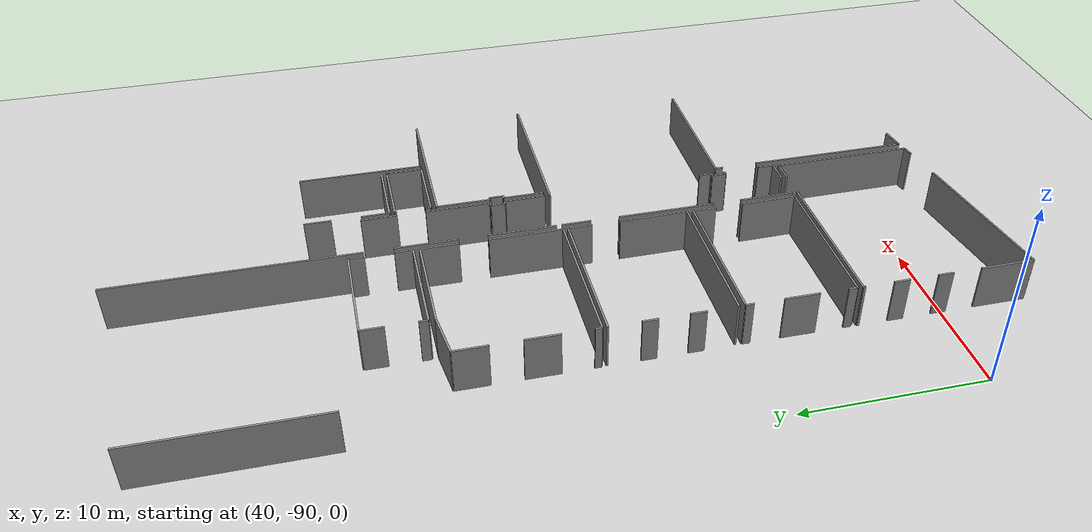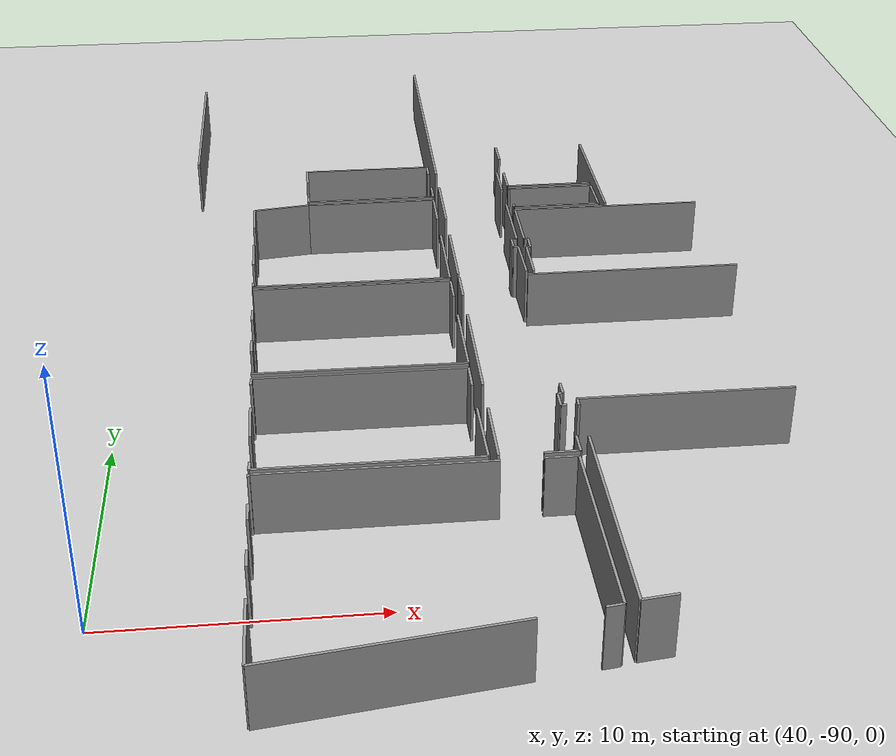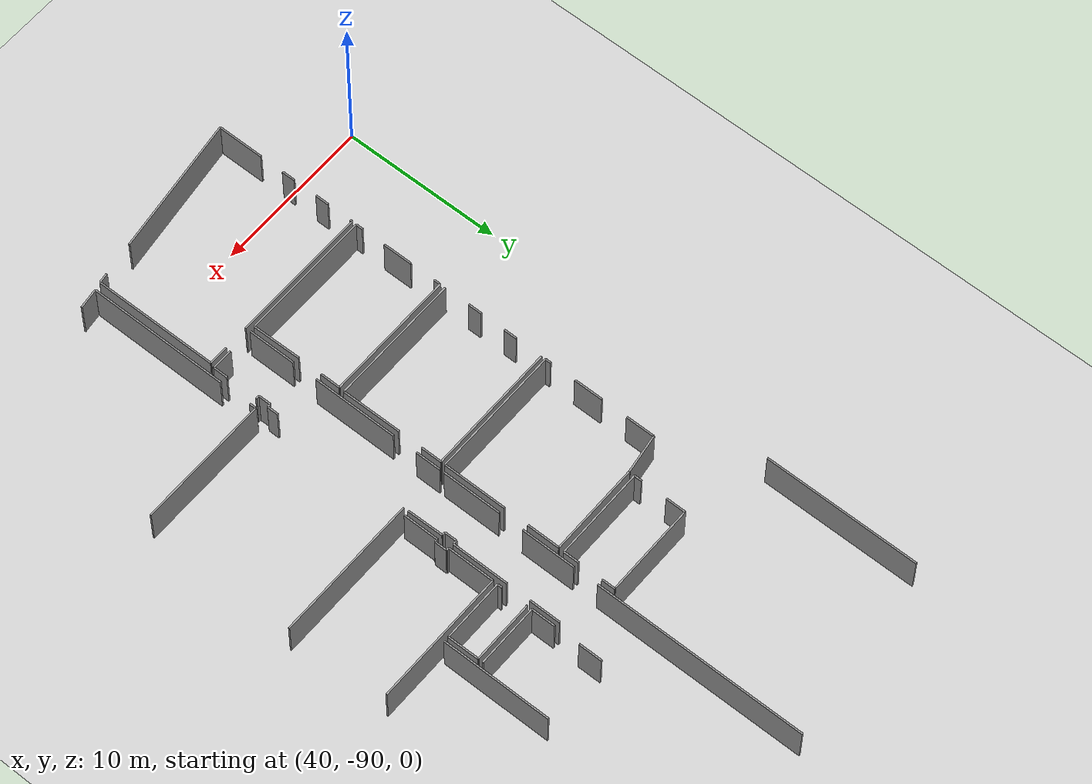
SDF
<sdf version="1.6">
 <world name="default">
  <model name="ground_plane">
   <static>1</static>
   <link name="link">
    <collision name="collision">
     <geometry><plane><normal>0 0 1</normal><size>100 100</size></plane></geometry>
     <surface><friction><ode><mu>100</mu><mu2>50</mu2></ode></friction></surface>
    </collision>
    <visual name="visual">
     <cast_shadows>0</cast_shadows>
     <geometry><plane><normal>0 0 1</normal><size>100 100</size></plane></geometry>
     <material>
      <script><uri>file://media/materials/scripts/gazebo.material</uri><name>Gazebo/Grey</name></script>
     </material>
    </visual>
   </link>
  </model>
  <model name="0510045922_A-40">
   <static>1</static>
   <link name="Wall_1545">
    <collision name="Wall_1545_Collision">
     <geometry><box><size>9.63970261168 0.1 2.5</size></box></geometry>
     <pose>4.81985130584 0 1.25 0 0 0</pose>
    </collision>
    <visual name="Wall_1545_Visual">
     <pose>4.81985130584 0 1.25 0 0 0</pose>
     <geometry><box><size>9.63970261168 0.1 2.5</size></box></geometry>
     <material>
      <script><uri>file://media/materials/scripts/gazebo.material</uri><name>Gazebo/Grey</name></script>
      <ambient>1 1 1 1</ambient>
     </material>
    </visual>
    <pose>176.722170681 -160.622075364 0 0 0 1.57079632679</pose>
   </link>
   <link name="Wall_1881">
    <collision name="Wall_1881_Collision">
     <geometry><box><size>3.69320709157 0.1 2.5</size></box></geometry>
     <pose>1.84660354578 0 1.25 0 0 0</pose>
    </collision>
    <visual name="Wall_1881_Visual">
     <pose>1.84660354578 0 1.25 0 0 0</pose>
     <geometry><box><size>3.69320709157 0.1 2.5</size></box></geometry>
     <material>
      <script><uri>file://media/materials/scripts/gazebo.material</uri><name>Gazebo/Grey</name></script>
      <ambient>1 1 1 1</ambient>
     </material>
    </visual>
    <pose>188.056732541 -172.945389846 0 0 0 1.57079632679</pose>
   </link>
   <link name="Wall_1882">
    <collision name="Wall_1882_Collision">
     <geometry><box><size>3.38260151236 0.1 2.5</size></box></geometry>
     <pose>1.69130075618 0 1.25 0 0 0</pose>
    </collision>
    <visual name="Wall_1882_Visual">
     <pose>1.69130075618 0 1.25 0 0 0</pose>
     <geometry><box><size>3.38260151236 0.1 2.5</size></box></geometry>
     <material>
      <script><uri>file://media/materials/scripts/gazebo.material</uri><name>Gazebo/Grey</name></script>
      <ambient>1 1 1 1</ambient>
     </material>
    </visual>
    <pose>188.056732541 -167.695342187 0 0 0 1.57079632679</pose>
   </link>
   <link name="Wall_1883">
    <collision name="Wall_1883_Collision">
     <geometry><box><size>13.1636271208 0.1 2.5</size></box></geometry>
     <pose>6.5818135604 0 1.25 0 0 0</pose>
    </collision>
    <visual name="Wall_1883_Visual">
     <pose>6.5818135604 0 1.25 0 0 0</pose>
     <geometry><box><size>13.1636271208 0.1 2.5</size></box></geometry>
     <material>
      <script><uri>file://media/materials/scripts/gazebo.material</uri><name>Gazebo/Grey</name></script>
      <ambient>1 1 1 1</ambient>
     </material>
    </visual>
    <pose>188.056732541 -162.755391752 0 0 0 1.57079632679</pose>
   </link>
   <link name="Wall_1887">
    <collision name="Wall_1887_Collision">
     <geometry><box><size>1.95539175192 0.1 2.5</size></box></geometry>
     <pose>0.977695875961 0 1.25 0 0 0</pose>
    </collision>
    <visual name="Wall_1887_Visual">
     <pose>0.977695875961 0 1.25 0 0 0</pose>
     <geometry><box><size>1.95539175192 0.1 2.5</size></box></geometry>
     <material>
      <script><uri>file://media/materials/scripts/gazebo.material</uri><name>Gazebo/Grey</name></script>
      <ambient>1 1 1 1</ambient>
     </material>
    </visual>
    <pose>190.962496028 -162.874601258 0 0 0 -1.57079632679</pose>
   </link>
   <link name="Wall_1888">
    <collision name="Wall_1888_Collision">
     <geometry><box><size>3.54222532884 0.1 2.5</size></box></geometry>
     <pose>1.77111266442 0 1.25 0 0 0</pose>
    </collision>
    <visual name="Wall_1888_Visual">
     <pose>1.77111266442 0 1.25 0 0 0</pose>
     <geometry><box><size>3.54222532884 0.1 2.5</size></box></geometry>
     <material>
      <script><uri>file://media/materials/scripts/gazebo.material</uri><name>Gazebo/Grey</name></script>
      <ambient>1 1 1 1</ambient>
     </material>
    </visual>
    <pose>190.962496028 -166.36166995 0 0 0 -1.57079632679</pose>
   </link>
   <link name="Wall_1889">
    <collision name="Wall_1889_Collision">
     <geometry><box><size>0.241214971087 0.1 2.5</size></box></geometry>
     <pose>0.120607485544 0 1.25 0 0 0</pose>
    </collision>
    <visual name="Wall_1889_Visual">
     <pose>0.120607485544 0 1.25 0 0 0</pose>
     <geometry><box><size>0.241214971087 0.1 2.5</size></box></geometry>
     <material>
      <script><uri>file://media/materials/scripts/gazebo.material</uri><name>Gazebo/Grey</name></script>
      <ambient>1 1 1 1</ambient>
     </material>
    </visual>
    <pose>190.962496028 -169.903895279 0 0 0 3.14159265359</pose>
   </link>
   <link name="Wall_1890">
    <collision name="Wall_1890_Collision">
     <geometry><box><size>0.772701277245 0.1 2.5</size></box></geometry>
     <pose>0.386350638622 0 1.25 0 0 0</pose>
    </collision>
    <visual name="Wall_1890_Visual">
     <pose>0.386350638622 0 1.25 0 0 0</pose>
     <geometry><box><size>0.772701277245 0.1 2.5</size></box></geometry>
     <material>
      <script><uri>file://media/materials/scripts/gazebo.material</uri><name>Gazebo/Grey</name></script>
      <ambient>1 1 1 1</ambient>
     </material>
    </visual>
    <pose>190.721281057 -169.903895279 0 0 0 -1.57079632679</pose>
   </link>
   <link name="Wall_1891">
    <collision name="Wall_1891_Collision">
     <geometry><box><size>0.207917646311 0.1 2.5</size></box></geometry>
     <pose>0.103958823156 0 1.25 0 0 0</pose>
    </collision>
    <visual name="Wall_1891_Visual">
     <pose>0.103958823156 0 1.25 0 0 0</pose>
     <geometry><box><size>0.207917646311 0.1 2.5</size></box></geometry>
     <material>
      <script><uri>file://media/materials/scripts/gazebo.material</uri><name>Gazebo/Grey</name></script>
      <ambient>1 1 1 1</ambient>
     </material>
    </visual>
    <pose>190.721281057 -170.676596556 0 0 0 0.0</pose>
   </link>
   <link name="Wall_1892">
    <collision name="Wall_1892_Collision">
     <geometry><box><size>2.26906442333 0.1 2.5</size></box></geometry>
     <pose>1.13453221167 0 1.25 0 0 0</pose>
    </collision>
    <visual name="Wall_1892_Visual">
     <pose>1.13453221167 0 1.25 0 0 0</pose>
     <geometry><box><size>2.26906442333 0.1 2.5</size></box></geometry>
     <material>
      <script><uri>file://media/materials/scripts/gazebo.material</uri><name>Gazebo/Grey</name></script>
      <ambient>1 1 1 1</ambient>
     </material>
    </visual>
    <pose>190.929198704 -170.676596556 0 0 0 -1.55533710582</pose>
   </link>
   <link name="Wall_1923">
    <collision name="Wall_1923_Collision">
     <geometry><box><size>0.697464573934 0.1 2.5</size></box></geometry>
     <pose>0.348732286967 0 1.25 0 0 0</pose>
    </collision>
    <visual name="Wall_1923_Visual">
     <pose>0.348732286967 0 1.25 0 0 0</pose>
     <geometry><box><size>0.697464573934 0.1 2.5</size></box></geometry>
     <material>
      <script><uri>file://media/materials/scripts/gazebo.material</uri><name>Gazebo/Grey</name></script>
      <ambient>1 1 1 1</ambient>
     </material>
    </visual>
    <pose>190.932503018 -181.851280422 0 0 0 -1.57079632679</pose>
   </link>
   <link name="Wall_1924">
    <collision name="Wall_1924_Collision">
     <geometry><box><size>0.200800660863 0.1 2.5</size></box></geometry>
     <pose>0.100400330431 0 1.25 0 0 0</pose>
    </collision>
    <visual name="Wall_1924_Visual">
     <pose>0.100400330431 0 1.25 0 0 0</pose>
     <geometry><box><size>0.200800660863 0.1 2.5</size></box></geometry>
     <material>
      <script><uri>file://media/materials/scripts/gazebo.material</uri><name>Gazebo/Grey</name></script>
      <ambient>1 1 1 1</ambient>
     </material>
    </visual>
    <pose>190.932503018 -182.548744996 0 0 0 3.14159265359</pose>
   </link>
   <link name="Wall_1925">
    <collision name="Wall_1925_Collision">
     <geometry><box><size>0.793035521383 0.1 2.5</size></box></geometry>
     <pose>0.396517760691 0 1.25 0 0 0</pose>
    </collision>
    <visual name="Wall_1925_Visual">
     <pose>0.396517760691 0 1.25 0 0 0</pose>
     <geometry><box><size>0.793035521383 0.1 2.5</size></box></geometry>
     <material>
      <script><uri>file://media/materials/scripts/gazebo.material</uri><name>Gazebo/Grey</name></script>
      <ambient>1 1 1 1</ambient>
     </material>
    </visual>
    <pose>190.731702358 -182.548744996 0 0 0 -1.57079632679</pose>
   </link>
   <link name="Wall_1926">
    <collision name="Wall_1926_Collision">
     <geometry><box><size>0.216305522018 0.1 2.5</size></box></geometry>
     <pose>0.108152761009 0 1.25 0 0 0</pose>
    </collision>
    <visual name="Wall_1926_Visual">
     <pose>0.108152761009 0 1.25 0 0 0</pose>
     <geometry><box><size>0.216305522018 0.1 2.5</size></box></geometry>
     <material>
      <script><uri>file://media/materials/scripts/gazebo.material</uri><name>Gazebo/Grey</name></script>
      <ambient>1 1 1 1</ambient>
     </material>
    </visual>
    <pose>190.731702358 -183.341780517 0 0 0 0.0</pose>
   </link>
   <link name="Wall_1927">
    <collision name="Wall_1927_Collision">
     <geometry><box><size>0.909703247125 0.1 2.5</size></box></geometry>
     <pose>0.454851623562 0 1.25 0 0 0</pose>
    </collision>
    <visual name="Wall_1927_Visual">
     <pose>0.454851623562 0 1.25 0 0 0</pose>
     <geometry><box><size>0.909703247125 0.1 2.5</size></box></geometry>
     <material>
      <script><uri>file://media/materials/scripts/gazebo.material</uri><name>Gazebo/Grey</name></script>
      <ambient>1 1 1 1</ambient>
     </material>
    </visual>
    <pose>190.94800788 -185.355124865 0 0 0 -1.57079632679</pose>
   </link>
   <link name="Wall_1928">
    <collision name="Wall_1928_Collision">
     <geometry><box><size>1.29808731016 0.1 2.5</size></box></geometry>
     <pose>0.64904365508 0 1.25 0 0 0</pose>
    </collision>
    <visual name="Wall_1928_Visual">
     <pose>0.64904365508 0 1.25 0 0 0</pose>
     <geometry><box><size>1.29808731016 0.1 2.5</size></box></geometry>
     <material>
      <script><uri>file://media/materials/scripts/gazebo.material</uri><name>Gazebo/Grey</name></script>
      <ambient>1 1 1 1</ambient>
     </material>
    </visual>
    <pose>190.94800788 -186.264828112 0 0 0 3.14159265359</pose>
   </link>
   <link name="Wall_1929">
    <collision name="Wall_1929_Collision">
     <geometry><box><size>2.98913388829 0.1 2.5</size></box></geometry>
     <pose>1.49456694414 0 1.25 0 0 0</pose>
    </collision>
    <visual name="Wall_1929_Visual">
     <pose>1.49456694414 0 1.25 0 0 0</pose>
     <geometry><box><size>2.98913388829 0.1 2.5</size></box></geometry>
     <material>
      <script><uri>file://media/materials/scripts/gazebo.material</uri><name>Gazebo/Grey</name></script>
      <ambient>1 1 1 1</ambient>
     </material>
    </visual>
    <pose>188.063849527 -186.264828112 0 0 0 1.57079632679</pose>
   </link>
   <link name="Wall_1930">
    <collision name="Wall_1930_Collision">
     <geometry><box><size>5.31460888352 0.1 2.5</size></box></geometry>
     <pose>2.65730444176 0 1.25 0 0 0</pose>
    </collision>
    <visual name="Wall_1930_Visual">
     <pose>2.65730444176 0 1.25 0 0 0</pose>
     <geometry><box><size>5.31460888352 0.1 2.5</size></box></geometry>
     <material>
      <script><uri>file://media/materials/scripts/gazebo.material</uri><name>Gazebo/Grey</name></script>
      <ambient>1 1 1 1</ambient>
     </material>
    </visual>
    <pose>188.063849527 -181.692927496 0 0 0 1.57079632679</pose>
   </link>
   <link name="Wall_1931">
    <collision name="Wall_1931_Collision">
     <geometry><box><size>1.59572980873 0.1 2.5</size></box></geometry>
     <pose>0.797864904366 0 1.25 0 0 0</pose>
    </collision>
    <visual name="Wall_1931_Visual">
     <pose>0.797864904366 0 1.25 0 0 0</pose>
     <geometry><box><size>1.59572980873 0.1 2.5</size></box></geometry>
     <material>
      <script><uri>file://media/materials/scripts/gazebo.material</uri><name>Gazebo/Grey</name></script>
      <ambient>1 1 1 1</ambient>
     </material>
    </visual>
    <pose>188.063849527 -174.824019826 0 0 0 1.57079632679</pose>
   </link>
   <link name="Wall_1932">
    <collision name="Wall_1932_Collision">
     <geometry><box><size>8.99154857978 0.1 2.5</size></box></geometry>
     <pose>4.49577428989 0 1.25 0 0 0</pose>
    </collision>
    <visual name="Wall_1932_Visual">
     <pose>4.49577428989 0 1.25 0 0 0</pose>
     <geometry><box><size>8.99154857978 0.1 2.5</size></box></geometry>
     <material>
      <script><uri>file://media/materials/scripts/gazebo.material</uri><name>Gazebo/Grey</name></script>
      <ambient>1 1 1 1</ambient>
     </material>
    </visual>
    <pose>190.981305204 -173.228290017 0 0 0 0.0</pose>
   </link>
   <link name="Wall_2005">
    <collision name="Wall_2005_Collision">
     <geometry><box><size>6.80282137637 0.1 2.5</size></box></geometry>
     <pose>3.40141068819 0 1.25 0 0 0</pose>
    </collision>
    <visual name="Wall_2005_Visual">
     <pose>3.40141068819 0 1.25 0 0 0</pose>
     <geometry><box><size>6.80282137637 0.1 2.5</size></box></geometry>
     <material>
      <script><uri>file://media/materials/scripts/gazebo.material</uri><name>Gazebo/Grey</name></script>
      <ambient>1 1 1 1</ambient>
     </material>
    </visual>
    <pose>195.510503908 -166.701760183 0 0 0 1.57079632679</pose>
   </link>
   <link name="Wall_2010">
    <collision name="Wall_2010_Collision">
     <geometry><box><size>2.20397788651 0.1 2.5</size></box></geometry>
     <pose>1.10198894325 0 1.25 0 0 0</pose>
    </collision>
    <visual name="Wall_2010_Visual">
     <pose>1.10198894325 0 1.25 0 0 0</pose>
     <geometry><box><size>2.20397788651 0.1 2.5</size></box></geometry>
     <material>
      <script><uri>file://media/materials/scripts/gazebo.material</uri><name>Gazebo/Grey</name></script>
      <ambient>1 1 1 1</ambient>
     </material>
    </visual>
    <pose>191.275643388 -172.923022177 0 0 0 1.57079632679</pose>
   </link>
   <link name="Wall_2011">
    <collision name="Wall_2011_Collision">
     <geometry><box><size>0.182245663087 0.1 2.5</size></box></geometry>
     <pose>0.0911228315435 0 1.25 0 0 0</pose>
    </collision>
    <visual name="Wall_2011_Visual">
     <pose>0.0911228315435 0 1.25 0 0 0</pose>
     <geometry><box><size>0.182245663087 0.1 2.5</size></box></geometry>
     <material>
      <script><uri>file://media/materials/scripts/gazebo.material</uri><name>Gazebo/Grey</name></script>
      <ambient>1 1 1 1</ambient>
     </material>
    </visual>
    <pose>191.275643388 -170.719044291 0 0 0 0.0</pose>
   </link>
   <link name="Wall_2012">
    <collision name="Wall_2012_Collision">
     <geometry><box><size>0.773972167503 0.1 2.5</size></box></geometry>
     <pose>0.386986083752 0 1.25 0 0 0</pose>
    </collision>
    <visual name="Wall_2012_Visual">
     <pose>0.386986083752 0 1.25 0 0 0</pose>
     <geometry><box><size>0.773972167503 0.1 2.5</size></box></geometry>
     <material>
      <script><uri>file://media/materials/scripts/gazebo.material</uri><name>Gazebo/Grey</name></script>
      <ambient>1 1 1 1</ambient>
     </material>
    </visual>
    <pose>191.457889051 -170.719044291 0 0 0 1.57079632679</pose>
   </link>
   <link name="Wall_2013">
    <collision name="Wall_2013_Collision">
     <geometry><box><size>0.171824362966 0.1 2.5</size></box></geometry>
     <pose>0.0859121814831 0 1.25 0 0 0</pose>
    </collision>
    <visual name="Wall_2013_Visual">
     <pose>0.0859121814831 0 1.25 0 0 0</pose>
     <geometry><box><size>0.171824362966 0.1 2.5</size></box></geometry>
     <material>
      <script><uri>file://media/materials/scripts/gazebo.material</uri><name>Gazebo/Grey</name></script>
      <ambient>1 1 1 1</ambient>
     </material>
    </visual>
    <pose>191.457889051 -169.945072123 0 0 0 3.14159265359</pose>
   </link>
   <link name="Wall_2014">
    <collision name="Wall_2014_Collision">
     <geometry><box><size>2.93346889496 0.1 2.5</size></box></geometry>
     <pose>1.46673444748 0 1.25 0 0 0</pose>
    </collision>
    <visual name="Wall_2014_Visual">
     <pose>1.46673444748 0 1.25 0 0 0</pose>
     <geometry><box><size>2.93346889496 0.1 2.5</size></box></geometry>
     <material>
      <script><uri>file://media/materials/scripts/gazebo.material</uri><name>Gazebo/Grey</name></script>
      <ambient>1 1 1 1</ambient>
     </material>
    </visual>
    <pose>191.286064688 -169.945072123 0 0 0 1.57079632679</pose>
   </link>
   <link name="Wall_2015">
    <collision name="Wall_2015_Collision">
     <geometry><box><size>8.37999618733 0.1 2.5</size></box></geometry>
     <pose>4.18999809366 0 1.25 0 0 0</pose>
    </collision>
    <visual name="Wall_2015_Visual">
     <pose>4.18999809366 0 1.25 0 0 0</pose>
     <geometry><box><size>8.37999618733 0.1 2.5</size></box></geometry>
     <material>
      <script><uri>file://media/materials/scripts/gazebo.material</uri><name>Gazebo/Grey</name></script>
      <ambient>1 1 1 1</ambient>
     </material>
    </visual>
    <pose>191.286064688 -167.011603228 0 0 0 0.0</pose>
   </link>
   <link name="Wall_2022">
    <collision name="Wall_2022_Collision">
     <geometry><box><size>3.911546038 0.1 2.5</size></box></geometry>
     <pose>1.955773019 0 1.25 0 0 0</pose>
    </collision>
    <visual name="Wall_2022_Visual">
     <pose>1.955773019 0 1.25 0 0 0</pose>
     <geometry><box><size>3.911546038 0.1 2.5</size></box></geometry>
     <material>
      <script><uri>file://media/materials/scripts/gazebo.material</uri><name>Gazebo/Grey</name></script>
      <ambient>1 1 1 1</ambient>
     </material>
    </visual>
    <pose>195.197610726 -164.440592235 0 0 0 3.14159265359</pose>
   </link>
   <link name="Wall_2023">
    <collision name="Wall_2023_Collision">
     <geometry><box><size>1.49965050518 0.1 2.5</size></box></geometry>
     <pose>0.749825252589 0 1.25 0 0 0</pose>
    </collision>
    <visual name="Wall_2023_Visual">
     <pose>0.749825252589 0 1.25 0 0 0</pose>
     <geometry><box><size>1.49965050518 0.1 2.5</size></box></geometry>
     <material>
      <script><uri>file://media/materials/scripts/gazebo.material</uri><name>Gazebo/Grey</name></script>
      <ambient>1 1 1 1</ambient>
     </material>
    </visual>
    <pose>191.286064688 -164.440592235 0 0 0 1.57079632679</pose>
   </link>
   <link name="Wall_2024">
    <collision name="Wall_2024_Collision">
     <geometry><box><size>1.45339009976 0.1 2.5</size></box></geometry>
     <pose>0.726695049882 0 1.25 0 0 0</pose>
    </collision>
    <visual name="Wall_2024_Visual">
     <pose>0.726695049882 0 1.25 0 0 0</pose>
     <geometry><box><size>1.45339009976 0.1 2.5</size></box></geometry>
     <material>
      <script><uri>file://media/materials/scripts/gazebo.material</uri><name>Gazebo/Grey</name></script>
      <ambient>1 1 1 1</ambient>
     </material>
    </visual>
    <pose>191.286064688 -161.345720277 0 0 0 1.57079632679</pose>
   </link>
   <link name="Wall_2027">
    <collision name="Wall_2027_Collision">
     <geometry><box><size>3.89654953295 0.1 2.5</size></box></geometry>
     <pose>1.94827476647 0 1.25 0 0 0</pose>
    </collision>
    <visual name="Wall_2027_Visual">
     <pose>1.94827476647 0 1.25 0 0 0</pose>
     <geometry><box><size>3.89654953295 0.1 2.5</size></box></geometry>
     <material>
      <script><uri>file://media/materials/scripts/gazebo.material</uri><name>Gazebo/Grey</name></script>
      <ambient>1 1 1 1</ambient>
     </material>
    </visual>
    <pose>195.199644151 -166.693880663 0 0 0 3.14159265359</pose>
   </link>
   <link name="Wall_2028">
    <collision name="Wall_2028_Collision">
     <geometry><box><size>0.289508800915 0.1 2.5</size></box></geometry>
     <pose>0.144754400458 0 1.25 0 0 0</pose>
    </collision>
    <visual name="Wall_2028_Visual">
     <pose>0.144754400458 0 1.25 0 0 0</pose>
     <geometry><box><size>0.289508800915 0.1 2.5</size></box></geometry>
     <material>
      <script><uri>file://media/materials/scripts/gazebo.material</uri><name>Gazebo/Grey</name></script>
      <ambient>1 1 1 1</ambient>
     </material>
    </visual>
    <pose>191.303094618 -166.693880663 0 0 0 1.57079632679</pose>
   </link>
   <link name="Wall_2029">
    <collision name="Wall_2029_Collision">
     <geometry><box><size>0.0884539620004 0.1 2.5</size></box></geometry>
     <pose>0.0442269810002 0 1.25 0 0 0</pose>
    </collision>
    <visual name="Wall_2029_Visual">
     <pose>0.0442269810002 0 1.25 0 0 0</pose>
     <geometry><box><size>0.0884539620004 0.1 2.5</size></box></geometry>
     <material>
      <script><uri>file://media/materials/scripts/gazebo.material</uri><name>Gazebo/Grey</name></script>
      <ambient>1 1 1 1</ambient>
     </material>
    </visual>
    <pose>191.303094618 -164.832280613 0 0 0 1.57079632679</pose>
   </link>
   <link name="Wall_2030">
    <collision name="Wall_2030_Collision">
     <geometry><box><size>3.88180720595 0.1 2.5</size></box></geometry>
     <pose>1.94090360297 0 1.25 0 0 0</pose>
    </collision>
    <visual name="Wall_2030_Visual">
     <pose>1.94090360297 0 1.25 0 0 0</pose>
     <geometry><box><size>3.88180720595 0.1 2.5</size></box></geometry>
     <material>
      <script><uri>file://media/materials/scripts/gazebo.material</uri><name>Gazebo/Grey</name></script>
      <ambient>1 1 1 1</ambient>
     </material>
    </visual>
    <pose>191.303094618 -164.743826651 0 0 0 0.0</pose>
   </link>
   <link name="Wall_2031">
    <collision name="Wall_2031_Collision">
     <geometry><box><size>1.95010973773 0.1 2.5</size></box></geometry>
     <pose>0.975054868864 0 1.25 0 0 0</pose>
    </collision>
    <visual name="Wall_2031_Visual">
     <pose>0.975054868864 0 1.25 0 0 0</pose>
     <geometry><box><size>1.95010973773 0.1 2.5</size></box></geometry>
     <material>
      <script><uri>file://media/materials/scripts/gazebo.material</uri><name>Gazebo/Grey</name></script>
      <ambient>1 1 1 1</ambient>
     </material>
    </visual>
    <pose>195.184901824 -164.743826651 0 0 0 -1.56323651252</pose>
   </link>
   <link name="Wall_2032">
    <collision name="Wall_2032_Collision">
     <geometry><box><size>5.77212937663 0.1 2.5</size></box></geometry>
     <pose>2.88606468831 0 1.25 0 0 0</pose>
    </collision>
    <visual name="Wall_2032_Visual">
     <pose>2.88606468831 0 1.25 0 0 0</pose>
     <geometry><box><size>5.77212937663 0.1 2.5</size></box></geometry>
     <material>
      <script><uri>file://media/materials/scripts/gazebo.material</uri><name>Gazebo/Grey</name></script>
      <ambient>1 1 1 1</ambient>
     </material>
    </visual>
    <pose>187.700629091 -165.269466862 0 0 0 3.14159265359</pose>
   </link>
   <link name="Wall_2033">
    <collision name="Wall_2033_Collision">
     <geometry><box><size>0.475058778674 0.1 2.5</size></box></geometry>
     <pose>0.237529389337 0 1.25 0 0 0</pose>
    </collision>
    <visual name="Wall_2033_Visual">
     <pose>0.237529389337 0 1.25 0 0 0</pose>
     <geometry><box><size>0.475058778674 0.1 2.5</size></box></geometry>
     <material>
      <script><uri>file://media/materials/scripts/gazebo.material</uri><name>Gazebo/Grey</name></script>
      <ambient>1 1 1 1</ambient>
     </material>
    </visual>
    <pose>181.928499714 -165.269466862 0 0 0 1.57079632679</pose>
   </link>
   <link name="Wall_2034">
    <collision name="Wall_2034_Collision">
     <geometry><box><size>1.22564656542 0.1 2.5</size></box></geometry>
     <pose>0.61282328271 0 1.25 0 0 0</pose>
    </collision>
    <visual name="Wall_2034_Visual">
     <pose>0.61282328271 0 1.25 0 0 0</pose>
     <geometry><box><size>1.22564656542 0.1 2.5</size></box></geometry>
     <material>
      <script><uri>file://media/materials/scripts/gazebo.material</uri><name>Gazebo/Grey</name></script>
      <ambient>1 1 1 1</ambient>
     </material>
    </visual>
    <pose>181.928499714 -163.164110059 0 0 0 1.57079632679</pose>
   </link>
   <link name="Wall_2035">
    <collision name="Wall_2035_Collision">
     <geometry><box><size>5.76450403508 0.1 2.5</size></box></geometry>
     <pose>2.88225201754 0 1.25 0 0 0</pose>
    </collision>
    <visual name="Wall_2035_Visual">
     <pose>2.88225201754 0 1.25 0 0 0</pose>
     <geometry><box><size>5.76450403508 0.1 2.5</size></box></geometry>
     <material>
      <script><uri>file://media/materials/scripts/gazebo.material</uri><name>Gazebo/Grey</name></script>
      <ambient>1 1 1 1</ambient>
     </material>
    </visual>
    <pose>181.928499714 -161.938463494 0 0 0 0.0</pose>
   </link>
   <link name="Wall_2036">
    <collision name="Wall_2036_Collision">
     <geometry><box><size>0.830399694986 0.1 2.5</size></box></geometry>
     <pose>0.415199847493 0 1.25 0 0 0</pose>
    </collision>
    <visual name="Wall_2036_Visual">
     <pose>0.415199847493 0 1.25 0 0 0</pose>
     <geometry><box><size>0.830399694986 0.1 2.5</size></box></geometry>
     <material>
      <script><uri>file://media/materials/scripts/gazebo.material</uri><name>Gazebo/Grey</name></script>
      <ambient>1 1 1 1</ambient>
     </material>
    </visual>
    <pose>187.693003749 -161.938463494 0 0 0 -1.57079632679</pose>
   </link>
   <link name="Wall_2037">
    <collision name="Wall_2037_Collision">
     <geometry><box><size>0.973531801912 0.1 2.5</size></box></geometry>
     <pose>0.486765900956 0 1.25 0 0 0</pose>
    </collision>
    <visual name="Wall_2037_Visual">
     <pose>0.486765900956 0 1.25 0 0 0</pose>
     <geometry><box><size>0.973531801912 0.1 2.5</size></box></geometry>
     <material>
      <script><uri>file://media/materials/scripts/gazebo.material</uri><name>Gazebo/Grey</name></script>
      <ambient>1 1 1 1</ambient>
     </material>
    </visual>
    <pose>187.693003749 -164.295964923 0 0 0 -1.56296358881</pose>
   </link>
   <link name="Wall_2038">
    <collision name="Wall_2038_Collision">
     <geometry><box><size>8.21401791955 0.1 2.5</size></box></geometry>
     <pose>4.10700895978 0 1.25 0 0 0</pose>
    </collision>
    <visual name="Wall_2038_Visual">
     <pose>4.10700895978 0 1.25 0 0 0</pose>
     <geometry><box><size>8.21401791955 0.1 2.5</size></box></geometry>
     <material>
      <script><uri>file://media/materials/scripts/gazebo.material</uri><name>Gazebo/Grey</name></script>
      <ambient>1 1 1 1</ambient>
     </material>
    </visual>
    <pose>187.6785156 -173.223460634 0 0 0 3.14159265359</pose>
   </link>
   <link name="Wall_2039">
    <collision name="Wall_2039_Collision">
     <geometry><box><size>0.353815848002 0.1 2.5</size></box></geometry>
     <pose>0.176907924001 0 1.25 0 0 0</pose>
    </collision>
    <visual name="Wall_2039_Visual">
     <pose>0.176907924001 0 1.25 0 0 0</pose>
     <geometry><box><size>0.353815848002 0.1 2.5</size></box></geometry>
     <material>
      <script><uri>file://media/materials/scripts/gazebo.material</uri><name>Gazebo/Grey</name></script>
      <ambient>1 1 1 1</ambient>
     </material>
    </visual>
    <pose>179.464497681 -173.223460634 0 0 0 1.57079632679</pose>
   </link>
   <link name="Wall_2040">
    <collision name="Wall_2040_Collision">
     <geometry><box><size>1.83236957489 0.1 2.5</size></box></geometry>
     <pose>0.916184787444 0 1.25 0 0 0</pose>
    </collision>
    <visual name="Wall_2040_Visual">
     <pose>0.916184787444 0 1.25 0 0 0</pose>
     <geometry><box><size>1.83236957489 0.1 2.5</size></box></geometry>
     <material>
      <script><uri>file://media/materials/scripts/gazebo.material</uri><name>Gazebo/Grey</name></script>
      <ambient>1 1 1 1</ambient>
     </material>
    </visual>
    <pose>179.464497681 -171.239346762 0 0 0 1.57079632679</pose>
   </link>
   <link name="Wall_2041">
    <collision name="Wall_2041_Collision">
     <geometry><box><size>1.80720594777 0.1 2.5</size></box></geometry>
     <pose>0.903602973883 0 1.25 0 0 0</pose>
    </collision>
    <visual name="Wall_2041_Visual">
     <pose>0.903602973883 0 1.25 0 0 0</pose>
     <geometry><box><size>1.80720594777 0.1 2.5</size></box></geometry>
     <material>
      <script><uri>file://media/materials/scripts/gazebo.material</uri><name>Gazebo/Grey</name></script>
      <ambient>1 1 1 1</ambient>
     </material>
    </visual>
    <pose>179.464497681 -167.764224439 0 0 0 1.57079632679</pose>
   </link>
   <link name="Wall_2042">
    <collision name="Wall_2042_Collision">
     <geometry><box><size>2.47682701419 0.1 2.5</size></box></geometry>
     <pose>1.2384135071 0 1.25 0 0 0</pose>
    </collision>
    <visual name="Wall_2042_Visual">
     <pose>1.2384135071 0 1.25 0 0 0</pose>
     <geometry><box><size>2.47682701419 0.1 2.5</size></box></geometry>
     <material>
      <script><uri>file://media/materials/scripts/gazebo.material</uri><name>Gazebo/Grey</name></script>
      <ambient>1 1 1 1</ambient>
     </material>
    </visual>
    <pose>179.464497681 -165.957018491 0 0 0 0.134843675305</pose>
   </link>
   <link name="Wall_2043">
    <collision name="Wall_2043_Collision">
     <geometry><box><size>5.75509944716 0.1 2.5</size></box></geometry>
     <pose>2.87754972358 0 1.25 0 0 0</pose>
    </collision>
    <visual name="Wall_2043_Visual">
     <pose>2.87754972358 0 1.25 0 0 0</pose>
     <geometry><box><size>5.75509944716 0.1 2.5</size></box></geometry>
     <material>
      <script><uri>file://media/materials/scripts/gazebo.material</uri><name>Gazebo/Grey</name></script>
      <ambient>1 1 1 1</ambient>
     </material>
    </visual>
    <pose>181.918840948 -165.624045244 0 0 0 0.0</pose>
   </link>
   <link name="Wall_2044">
    <collision name="Wall_2044_Collision">
     <geometry><box><size>2.04689585054 0.1 2.5</size></box></geometry>
     <pose>1.02344792527 0 1.25 0 0 0</pose>
    </collision>
    <visual name="Wall_2044_Visual">
     <pose>1.02344792527 0 1.25 0 0 0</pose>
     <geometry><box><size>2.04689585054 0.1 2.5</size></box></geometry>
     <material>
      <script><uri>file://media/materials/scripts/gazebo.material</uri><name>Gazebo/Grey</name></script>
      <ambient>1 1 1 1</ambient>
     </material>
    </visual>
    <pose>187.673940395 -165.624045244 0 0 0 -1.57079632679</pose>
   </link>
   <link name="Wall_2045">
    <collision name="Wall_2045_Collision">
     <geometry><box><size>3.99822337136 0.1 2.5</size></box></geometry>
     <pose>1.99911168568 0 1.25 0 0 0</pose>
    </collision>
    <visual name="Wall_2045_Visual">
     <pose>1.99911168568 0 1.25 0 0 0</pose>
     <geometry><box><size>3.99822337136 0.1 2.5</size></box></geometry>
     <material>
      <script><uri>file://media/materials/scripts/gazebo.material</uri><name>Gazebo/Grey</name></script>
      <ambient>1 1 1 1</ambient>
     </material>
    </visual>
    <pose>187.673940395 -169.225239881 0 0 0 -1.56965201706</pose>
   </link>
   <link name="Wall_2046">
    <collision name="Wall_2046_Collision">
     <geometry><box><size>8.23918154667 0.1 2.5</size></box></geometry>
     <pose>4.11959077334 0 1.25 0 0 0</pose>
    </collision>
    <visual name="Wall_2046_Visual">
     <pose>4.11959077334 0 1.25 0 0 0</pose>
     <geometry><box><size>8.23918154667 0.1 2.5</size></box></geometry>
     <material>
      <script><uri>file://media/materials/scripts/gazebo.material</uri><name>Gazebo/Grey</name></script>
      <ambient>1 1 1 1</ambient>
     </material>
    </visual>
    <pose>187.703679227 -180.085251319 0 0 0 3.14159265359</pose>
   </link>
   <link name="Wall_2047">
    <collision name="Wall_2047_Collision">
     <geometry><box><size>0.846667090297 0.1 2.5</size></box></geometry>
     <pose>0.423333545148 0 1.25 0 0 0</pose>
    </collision>
    <visual name="Wall_2047_Visual">
     <pose>0.423333545148 0 1.25 0 0 0</pose>
     <geometry><box><size>0.846667090297 0.1 2.5</size></box></geometry>
     <material>
      <script><uri>file://media/materials/scripts/gazebo.material</uri><name>Gazebo/Grey</name></script>
      <ambient>1 1 1 1</ambient>
     </material>
    </visual>
    <pose>179.464497681 -178.455207473 0 0 0 1.57079632679</pose>
   </link>
   <link name="Wall_2048">
    <collision name="Wall_2048_Collision">
     <geometry><box><size>0.821249285124 0.1 2.5</size></box></geometry>
     <pose>0.410624642562 0 1.25 0 0 0</pose>
    </collision>
    <visual name="Wall_2048_Visual">
     <pose>0.410624642562 0 1.25 0 0 0</pose>
     <geometry><box><size>0.821249285124 0.1 2.5</size></box></geometry>
     <material>
      <script><uri>file://media/materials/scripts/gazebo.material</uri><name>Gazebo/Grey</name></script>
      <ambient>1 1 1 1</ambient>
     </material>
    </visual>
    <pose>179.464497681 -176.016114888 0 0 0 1.57079632679</pose>
   </link>
   <link name="Wall_2049">
    <collision name="Wall_2049_Collision">
     <geometry><box><size>8.21401791955 0.1 2.5</size></box></geometry>
     <pose>4.10700895978 0 1.25 0 0 0</pose>
    </collision>
    <visual name="Wall_2049_Visual">
     <pose>4.10700895978 0 1.25 0 0 0</pose>
     <geometry><box><size>8.21401791955 0.1 2.5</size></box></geometry>
     <material>
      <script><uri>file://media/materials/scripts/gazebo.material</uri><name>Gazebo/Grey</name></script>
      <ambient>1 1 1 1</ambient>
     </material>
    </visual>
    <pose>179.464497681 -173.48882252 0 0 0 0.0</pose>
   </link>
   <link name="Wall_2050">
    <collision name="Wall_2050_Collision">
     <geometry><box><size>1.31410052742 0.1 2.5</size></box></geometry>
     <pose>0.65705026371 0 1.25 0 0 0</pose>
    </collision>
    <visual name="Wall_2050_Visual">
     <pose>0.65705026371 0 1.25 0 0 0</pose>
     <geometry><box><size>1.31410052742 0.1 2.5</size></box></geometry>
     <material>
      <script><uri>file://media/materials/scripts/gazebo.material</uri><name>Gazebo/Grey</name></script>
      <ambient>1 1 1 1</ambient>
     </material>
    </visual>
    <pose>187.6785156 -173.48882252 0 0 0 -1.57079632679</pose>
   </link>
   <link name="Wall_2051">
    <collision name="Wall_2051_Collision">
     <geometry><box><size>3.74183971228 0.1 2.5</size></box></geometry>
     <pose>1.87091985614 0 1.25 0 0 0</pose>
    </collision>
    <visual name="Wall_2051_Visual">
     <pose>1.87091985614 0 1.25 0 0 0</pose>
     <geometry><box><size>3.74183971228 0.1 2.5</size></box></geometry>
     <material>
      <script><uri>file://media/materials/scripts/gazebo.material</uri><name>Gazebo/Grey</name></script>
      <ambient>1 1 1 1</ambient>
     </material>
    </visual>
    <pose>187.6785156 -176.343496219 0 0 0 -1.56407134157</pose>
   </link>
   <link name="Wall_2052">
    <collision name="Wall_2052_Collision">
     <geometry><box><size>8.23943572473 0.1 2.5</size></box></geometry>
     <pose>4.11971786236 0 1.25 0 0 0</pose>
    </collision>
    <visual name="Wall_2052_Visual">
     <pose>4.11971786236 0 1.25 0 0 0</pose>
     <geometry><box><size>8.23943572473 0.1 2.5</size></box></geometry>
     <material>
      <script><uri>file://media/materials/scripts/gazebo.material</uri><name>Gazebo/Grey</name></script>
      <ambient>1 1 1 1</ambient>
     </material>
    </visual>
    <pose>187.714608884 -186.289229205 0 0 0 3.14159265359</pose>
   </link>
   <link name="Wall_2053">
    <collision name="Wall_2053_Collision">
     <geometry><box><size>0.455995424795 0.1 2.5</size></box></geometry>
     <pose>0.227997712398 0 1.25 0 0 0</pose>
    </collision>
    <visual name="Wall_2053_Visual">
     <pose>0.227997712398 0 1.25 0 0 0</pose>
     <geometry><box><size>0.455995424795 0.1 2.5</size></box></geometry>
     <material>
      <script><uri>file://media/materials/scripts/gazebo.material</uri><name>Gazebo/Grey</name></script>
      <ambient>1 1 1 1</ambient>
     </material>
    </visual>
    <pose>179.475173159 -186.289229205 0 0 0 1.57079632679</pose>
   </link>
   <link name="Wall_2054">
    <collision name="Wall_2054_Collision">
     <geometry><box><size>1.85753320201 0.1 2.5</size></box></geometry>
     <pose>0.928766601004 0 1.25 0 0 0</pose>
    </collision>
    <visual name="Wall_2054_Visual">
     <pose>0.928766601004 0 1.25 0 0 0</pose>
     <geometry><box><size>1.85753320201 0.1 2.5</size></box></geometry>
     <material>
      <script><uri>file://media/materials/scripts/gazebo.material</uri><name>Gazebo/Grey</name></script>
      <ambient>1 1 1 1</ambient>
     </material>
    </visual>
    <pose>179.475173159 -184.306132045 0 0 0 1.57079632679</pose>
   </link>
   <link name="Wall_2055">
    <collision name="Wall_2055_Collision">
     <geometry><box><size>0.429560907416 0.1 2.5</size></box></geometry>
     <pose>0.214780453708 0 1.25 0 0 0</pose>
    </collision>
    <visual name="Wall_2055_Visual">
     <pose>0.214780453708 0 1.25 0 0 0</pose>
     <geometry><box><size>0.429560907416 0.1 2.5</size></box></geometry>
     <material>
      <script><uri>file://media/materials/scripts/gazebo.material</uri><name>Gazebo/Grey</name></script>
      <ambient>1 1 1 1</ambient>
     </material>
    </visual>
    <pose>179.475173159 -180.856173349 0 0 0 1.57079632679</pose>
   </link>
   <link name="Wall_2056">
    <collision name="Wall_2056_Collision">
     <geometry><box><size>8.19063353879 0.1 2.5</size></box></geometry>
     <pose>4.0953167694 0 1.25 0 0 0</pose>
    </collision>
    <visual name="Wall_2056_Visual">
     <pose>4.0953167694 0 1.25 0 0 0</pose>
     <geometry><box><size>8.19063353879 0.1 2.5</size></box></geometry>
     <material>
      <script><uri>file://media/materials/scripts/gazebo.material</uri><name>Gazebo/Grey</name></script>
      <ambient>1 1 1 1</ambient>
     </material>
    </visual>
    <pose>179.475173159 -180.426612442 0 0 0 0.0</pose>
   </link>
   <link name="Wall_2057">
    <collision name="Wall_2057_Collision">
     <geometry><box><size>1.27622799771 0.1 2.5</size></box></geometry>
     <pose>0.638113998856 0 1.25 0 0 0</pose>
    </collision>
    <visual name="Wall_2057_Visual">
     <pose>0.638113998856 0 1.25 0 0 0</pose>
     <geometry><box><size>1.27622799771 0.1 2.5</size></box></geometry>
     <material>
      <script><uri>file://media/materials/scripts/gazebo.material</uri><name>Gazebo/Grey</name></script>
      <ambient>1 1 1 1</ambient>
     </material>
    </visual>
    <pose>187.665806698 -180.426612442 0 0 0 -1.57079632679</pose>
   </link>
   <link name="Wall_2058">
    <collision name="Wall_2058_Collision">
     <geometry><box><size>3.05764308998 0.1 2.5</size></box></geometry>
     <pose>1.52882154499 0 1.25 0 0 0</pose>
    </collision>
    <visual name="Wall_2058_Visual">
     <pose>1.52882154499 0 1.25 0 0 0</pose>
     <geometry><box><size>3.05764308998 0.1 2.5</size></box></geometry>
     <material>
      <script><uri>file://media/materials/scripts/gazebo.material</uri><name>Gazebo/Grey</name></script>
      <ambient>1 1 1 1</ambient>
     </material>
    </visual>
    <pose>187.665806698 -183.231975599 0 0 0 -1.55483492883</pose>
   </link>
   <link name="Wall_2059">
    <collision name="Wall_2059_Collision">
     <geometry><box><size>0.616477412333 0.1 2.5</size></box></geometry>
     <pose>0.308238706166 0 1.25 0 0 0</pose>
    </collision>
    <visual name="Wall_2059_Visual">
     <pose>0.308238706166 0 1.25 0 0 0</pose>
     <geometry><box><size>0.616477412333 0.1 2.5</size></box></geometry>
     <material>
      <script><uri>file://media/materials/scripts/gazebo.material</uri><name>Gazebo/Grey</name></script>
      <ambient>1 1 1 1</ambient>
     </material>
    </visual>
    <pose>190.883192476 -194.378699879 0 0 0 -2.99969559899</pose>
   </link>
   <link name="Wall_2060">
    <collision name="Wall_2060_Collision">
     <geometry><box><size>8.76342618817 0.1 2.5</size></box></geometry>
     <pose>4.38171309409 0 1.25 0 0 0</pose>
    </collision>
    <visual name="Wall_2060_Visual">
     <pose>4.38171309409 0 1.25 0 0 0</pose>
     <geometry><box><size>8.76342618817 0.1 2.5</size></box></geometry>
     <material>
      <script><uri>file://media/materials/scripts/gazebo.material</uri><name>Gazebo/Grey</name></script>
      <ambient>1 1 1 1</ambient>
     </material>
    </visual>
    <pose>188.138323696 -194.777505242 0 0 0 -3.00449477458</pose>
   </link>
   <link name="Wall_2061">
    <collision name="Wall_2061_Collision">
     <geometry><box><size>2.93397725106 0.1 2.5</size></box></geometry>
     <pose>1.46698862553 0 1.25 0 0 0</pose>
    </collision>
    <visual name="Wall_2061_Visual">
     <pose>1.46698862553 0 1.25 0 0 0</pose>
     <geometry><box><size>2.93397725106 0.1 2.5</size></box></geometry>
     <material>
      <script><uri>file://media/materials/scripts/gazebo.material</uri><name>Gazebo/Grey</name></script>
      <ambient>1 1 1 1</ambient>
     </material>
    </visual>
    <pose>179.457126517 -195.975192222 0 0 0 1.57079632679</pose>
   </link>
   <link name="Wall_2062">
    <collision name="Wall_2062_Collision">
     <geometry><box><size>0.834974899917 0.1 2.5</size></box></geometry>
     <pose>0.417487449959 0 1.25 0 0 0</pose>
    </collision>
    <visual name="Wall_2062_Visual">
     <pose>0.417487449959 0 1.25 0 0 0</pose>
     <geometry><box><size>0.834974899917 0.1 2.5</size></box></geometry>
     <material>
      <script><uri>file://media/materials/scripts/gazebo.material</uri><name>Gazebo/Grey</name></script>
      <ambient>1 1 1 1</ambient>
     </material>
    </visual>
    <pose>179.457126517 -191.502675224 0 0 0 1.57079632679</pose>
   </link>
   <link name="Wall_2063">
    <collision name="Wall_2063_Collision">
     <geometry><box><size>0.857088390418 0.1 2.5</size></box></geometry>
     <pose>0.428544195209 0 1.25 0 0 0</pose>
    </collision>
    <visual name="Wall_2063_Visual">
     <pose>0.428544195209 0 1.25 0 0 0</pose>
     <geometry><box><size>0.857088390418 0.1 2.5</size></box></geometry>
     <material>
      <script><uri>file://media/materials/scripts/gazebo.material</uri><name>Gazebo/Grey</name></script>
      <ambient>1 1 1 1</ambient>
     </material>
    </visual>
    <pose>179.457126517 -189.118230921 0 0 0 1.57079632679</pose>
   </link>
   <link name="Wall_2064">
    <collision name="Wall_2064_Collision">
     <geometry><box><size>0.131918408845 0.1 2.5</size></box></geometry>
     <pose>0.0659592044227 0 1.25 0 0 0</pose>
    </collision>
    <visual name="Wall_2064_Visual">
     <pose>0.0659592044227 0 1.25 0 0 0</pose>
     <geometry><box><size>0.131918408845 0.1 2.5</size></box></geometry>
     <material>
      <script><uri>file://media/materials/scripts/gazebo.material</uri><name>Gazebo/Grey</name></script>
      <ambient>1 1 1 1</ambient>
     </material>
    </visual>
    <pose>179.457126517 -186.711673127 0 0 0 1.57079632679</pose>
   </link>
   <link name="Wall_2065">
    <collision name="Wall_2065_Collision">
     <geometry><box><size>8.63722437568 0.1 2.5</size></box></geometry>
     <pose>4.31861218784 0 1.25 0 0 0</pose>
    </collision>
    <visual name="Wall_2065_Visual">
     <pose>4.31861218784 0 1.25 0 0 0</pose>
     <geometry><box><size>8.63722437568 0.1 2.5</size></box></geometry>
     <material>
      <script><uri>file://media/materials/scripts/gazebo.material</uri><name>Gazebo/Grey</name></script>
      <ambient>1 1 1 1</ambient>
     </material>
    </visual>
    <pose>179.457126517 -186.579754718 0 0 0 0.0</pose>
   </link>
   <link name="Wall_2066">
    <collision name="Wall_2066_Collision">
     <geometry><box><size>1.20683738959 0.1 2.5</size></box></geometry>
     <pose>0.603418694796 0 1.25 0 0 0</pose>
    </collision>
    <visual name="Wall_2066_Visual">
     <pose>0.603418694796 0 1.25 0 0 0</pose>
     <geometry><box><size>1.20683738959 0.1 2.5</size></box></geometry>
     <material>
      <script><uri>file://media/materials/scripts/gazebo.material</uri><name>Gazebo/Grey</name></script>
      <ambient>1 1 1 1</ambient>
     </material>
    </visual>
    <pose>189.640770159 -186.579754718 0 0 0 0.0</pose>
   </link>
   <link name="Wall_2067">
    <collision name="Wall_2067_Collision">
     <geometry><box><size>7.79902634389 0.1 2.5</size></box></geometry>
     <pose>3.89951317194 0 1.25 0 0 0</pose>
    </collision>
    <visual name="Wall_2067_Visual">
     <pose>3.89951317194 0 1.25 0 0 0</pose>
     <geometry><box><size>7.79902634389 0.1 2.5</size></box></geometry>
     <material>
      <script><uri>file://media/materials/scripts/gazebo.material</uri><name>Gazebo/Grey</name></script>
      <ambient>1 1 1 1</ambient>
     </material>
    </visual>
    <pose>190.847607549 -186.579754718 0 0 0 -1.56623357125</pose>
   </link>
   <link name="Wall_2097">
    <collision name="Wall_2097_Collision">
     <geometry><box><size>1.27189869123 0.1 2.5</size></box></geometry>
     <pose>0.635949345613 0 1.25 0 0 0</pose>
    </collision>
    <visual name="Wall_2097_Visual">
     <pose>0.635949345613 0 1.25 0 0 0</pose>
     <geometry><box><size>1.27189869123 0.1 2.5</size></box></geometry>
     <material>
      <script><uri>file://media/materials/scripts/gazebo.material</uri><name>Gazebo/Grey</name></script>
      <ambient>1 1 1 1</ambient>
     </material>
    </visual>
    <pose>192.652525894 -194.091732859 0 0 0 -3.01354434614</pose>
   </link>
   <link name="Wall_2098">
    <collision name="Wall_2098_Collision">
     <geometry><box><size>8.8392959268 0.1 2.5</size></box></geometry>
     <pose>4.4196479634 0 1.25 0 0 0</pose>
    </collision>
    <visual name="Wall_2098_Visual">
     <pose>4.4196479634 0 1.25 0 0 0</pose>
     <geometry><box><size>8.8392959268 0.1 2.5</size></box></geometry>
     <material>
      <script><uri>file://media/materials/scripts/gazebo.material</uri><name>Gazebo/Grey</name></script>
      <ambient>1 1 1 1</ambient>
     </material>
    </visual>
    <pose>191.391040224 -194.254152634 0 0 0 1.57079632679</pose>
   </link>
   <link name="Wall_2099">
    <collision name="Wall_2099_Collision">
     <geometry><box><size>0.42727330495 0.1 2.5</size></box></geometry>
     <pose>0.213636652475 0 1.25 0 0 0</pose>
    </collision>
    <visual name="Wall_2099_Visual">
     <pose>0.213636652475 0 1.25 0 0 0</pose>
     <geometry><box><size>0.42727330495 0.1 2.5</size></box></geometry>
     <material>
      <script><uri>file://media/materials/scripts/gazebo.material</uri><name>Gazebo/Grey</name></script>
      <ambient>1 1 1 1</ambient>
     </material>
    </visual>
    <pose>191.391040224 -183.393887018 0 0 0 1.57079632679</pose>
   </link>
   <link name="Wall_2100">
    <collision name="Wall_2100_Collision">
     <geometry><box><size>8.21706805617 0.1 2.5</size></box></geometry>
     <pose>4.10853402809 0 1.25 0 0 0</pose>
    </collision>
    <visual name="Wall_2100_Visual">
     <pose>4.10853402809 0 1.25 0 0 0</pose>
     <geometry><box><size>8.21706805617 0.1 2.5</size></box></geometry>
     <material>
      <script><uri>file://media/materials/scripts/gazebo.material</uri><name>Gazebo/Grey</name></script>
      <ambient>1 1 1 1</ambient>
     </material>
    </visual>
    <pose>191.391040224 -182.966613713 0 0 0 0.0</pose>
   </link>
   <pose>-134.15 101.210036856 0 0 0 0</pose>
  </model>
 </world>
</sdf>
